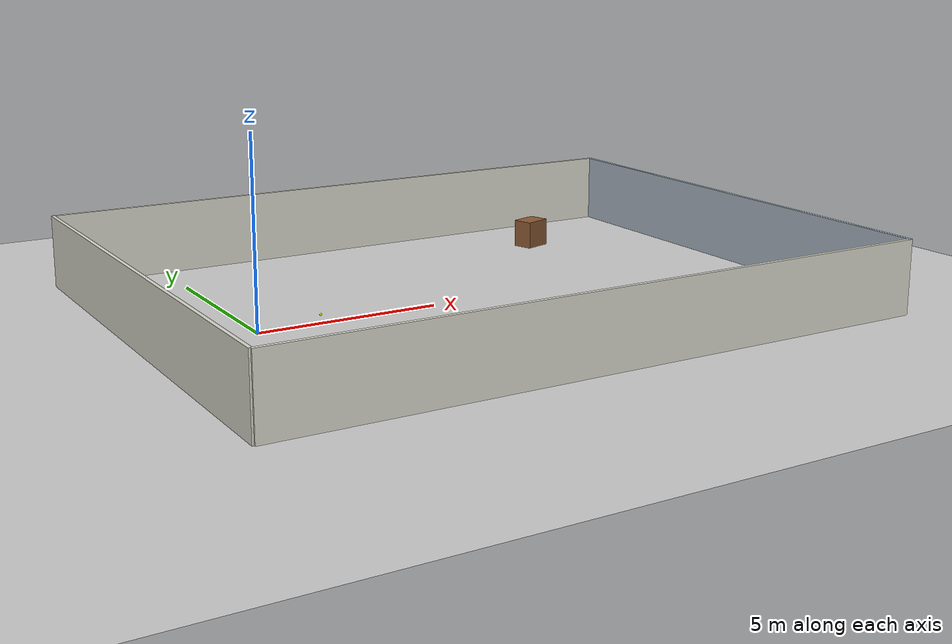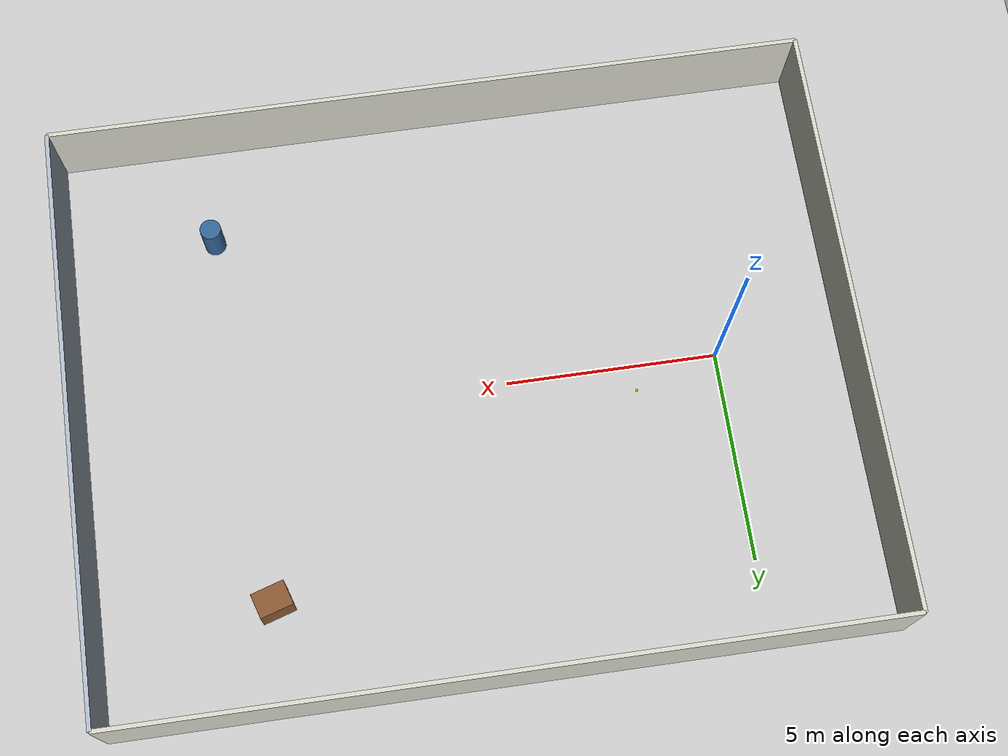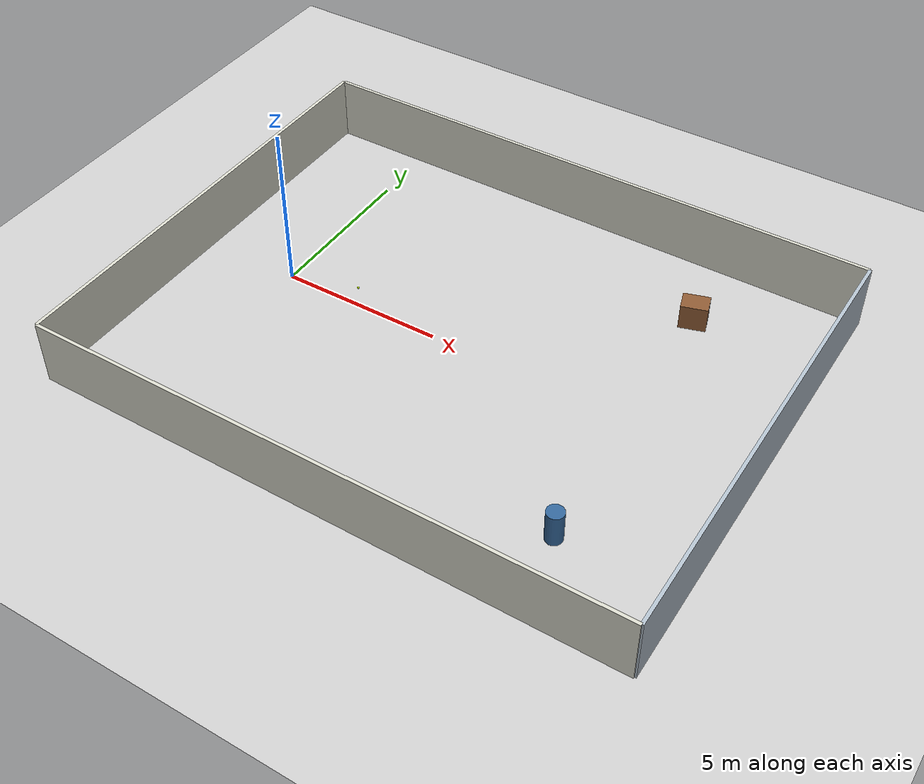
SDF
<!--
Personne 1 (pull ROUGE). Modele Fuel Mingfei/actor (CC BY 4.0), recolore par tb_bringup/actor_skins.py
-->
<sdf version="1.9">
 <world name="person_world">
  <physics name="1ms" type="ignored">
   <max_step_size>0.001</max_step_size>
   <real_time_factor>1.0</real_time_factor>
  </physics>
  <plugin filename="gz-sim-physics-system" name="gz::sim::systems::Physics"/>
  <plugin filename="gz-sim-user-commands-system" name="gz::sim::systems::UserCommands"/>
  <plugin filename="gz-sim-scene-broadcaster-system" name="gz::sim::systems::SceneBroadcaster"/>
  <plugin filename="gz-sim-sensors-system" name="gz::sim::systems::Sensors">
   <render_engine>ogre2</render_engine>
  </plugin>
  <plugin filename="gz-sim-imu-system" name="gz::sim::systems::Imu"/>
  <scene><ambient>0.6 0.6 0.6 1</ambient><background>0.8 0.8 0.8 1</background><shadows>false</shadows></scene>
  <include><uri>https://fuel.gazebosim.org/1.0/OpenRobotics/models/Ground Plane</uri></include>
  <include><uri>https://fuel.gazebosim.org/1.0/OpenRobotics/models/Sun</uri></include>
  <model name="walls">
   <static>true</static>
   <link name="link">
    <collision name="north_c">
     <pose>6 7 1 0 0 0</pose>
     <geometry><box><size>18 0.1 2</size></box></geometry>
    </collision>
    <visual name="north_v">
     <pose>6 7 1 0 0 0</pose>
     <geometry><box><size>18 0.1 2</size></box></geometry>
     <material><ambient>0.85 0.85 0.8 1</ambient><diffuse>0.85 0.85 0.8 1</diffuse></material>
    </visual>
    <collision name="south_c">
     <pose>6 -7 1 0 0 0</pose>
     <geometry><box><size>18 0.1 2</size></box></geometry>
    </collision>
    <visual name="south_v">
     <pose>6 -7 1 0 0 0</pose>
     <geometry><box><size>18 0.1 2</size></box></geometry>
     <material><ambient>0.85 0.85 0.8 1</ambient><diffuse>0.85 0.85 0.8 1</diffuse></material>
    </visual>
    <collision name="east_c">
     <pose>15 0 1 0 0 0</pose>
     <geometry><box><size>0.1 14 2</size></box></geometry>
    </collision>
    <visual name="east_v">
     <pose>15 0 1 0 0 0</pose>
     <geometry><box><size>0.1 14 2</size></box></geometry>
     <material><ambient>0.7 0.75 0.8 1</ambient><diffuse>0.7 0.75 0.8 1</diffuse></material>
    </visual>
    <collision name="west_c">
     <pose>-3 0 1 0 0 0</pose>
     <geometry><box><size>0.1 14 2</size></box></geometry>
    </collision>
    <visual name="west_v">
     <pose>-3 0 1 0 0 0</pose>
     <geometry><box><size>0.1 14 2</size></box></geometry>
     <material><ambient>0.85 0.85 0.8 1</ambient><diffuse>0.85 0.85 0.8 1</diffuse></material>
    </visual>
   </link>
  </model>
  <model name="box_1">
   <static>true</static>
   <pose>11 4.5 0.4 0 0 0.3</pose>
   <link name="link">
    <collision name="c"><geometry><box><size>0.8 0.6 0.8</size></box></geometry></collision>
    <visual name="v">
     <geometry><box><size>0.8 0.6 0.8</size></box></geometry>
     <material><ambient>0.55 0.35 0.2 1</ambient><diffuse>0.55 0.35 0.2 1</diffuse></material>
    </visual>
   </link>
  </model>
  <model name="cylinder_1">
   <static>true</static>
   <pose>11.5 -4.5 0.5 0 0 0</pose>
   <link name="link">
    <collision name="c">
     <geometry><cylinder><radius>0.25</radius><length>1.0</length></cylinder></geometry>
    </collision>
    <visual name="v">
     <geometry><cylinder><radius>0.25</radius><length>1.0</length></cylinder></geometry>
     <material><ambient>0.2 0.4 0.6 1</ambient><diffuse>0.2 0.4 0.6 1</diffuse></material>
    </visual>
   </link>
  </model>
  <model name="tennis_ball">
   <pose>2.0 0.6 0.0355 0 0 0</pose>
   <link name="link">
    <gravity>false</gravity>
    <inertial>
     <mass>0.058</mass>
     <inertia><ixx>2.6e-5</ixx><ixy>0</ixy><ixz>0</ixz><iyy>2.6e-5</iyy><iyz>0</iyz><izz>2.6e-5</izz></inertia>
    </inertial>
    <collision name="c"><geometry><sphere><radius>0.0335</radius></sphere></geometry></collision>
    <visual name="v">
     <geometry><sphere><radius>0.0335</radius></sphere></geometry>
     <material><ambient>0.8 1.0 0.0 1</ambient><diffuse>0.8 1.0 0.0 1</diffuse></material>
    </visual>
   </link>
   <plugin filename="gz-sim-velocity-control-system" name="gz::sim::systems::VelocityControl">
    <topic>/model/tennis_ball/cmd_vel</topic>
   </plugin>
  </model>
 </world>
</sdf>
